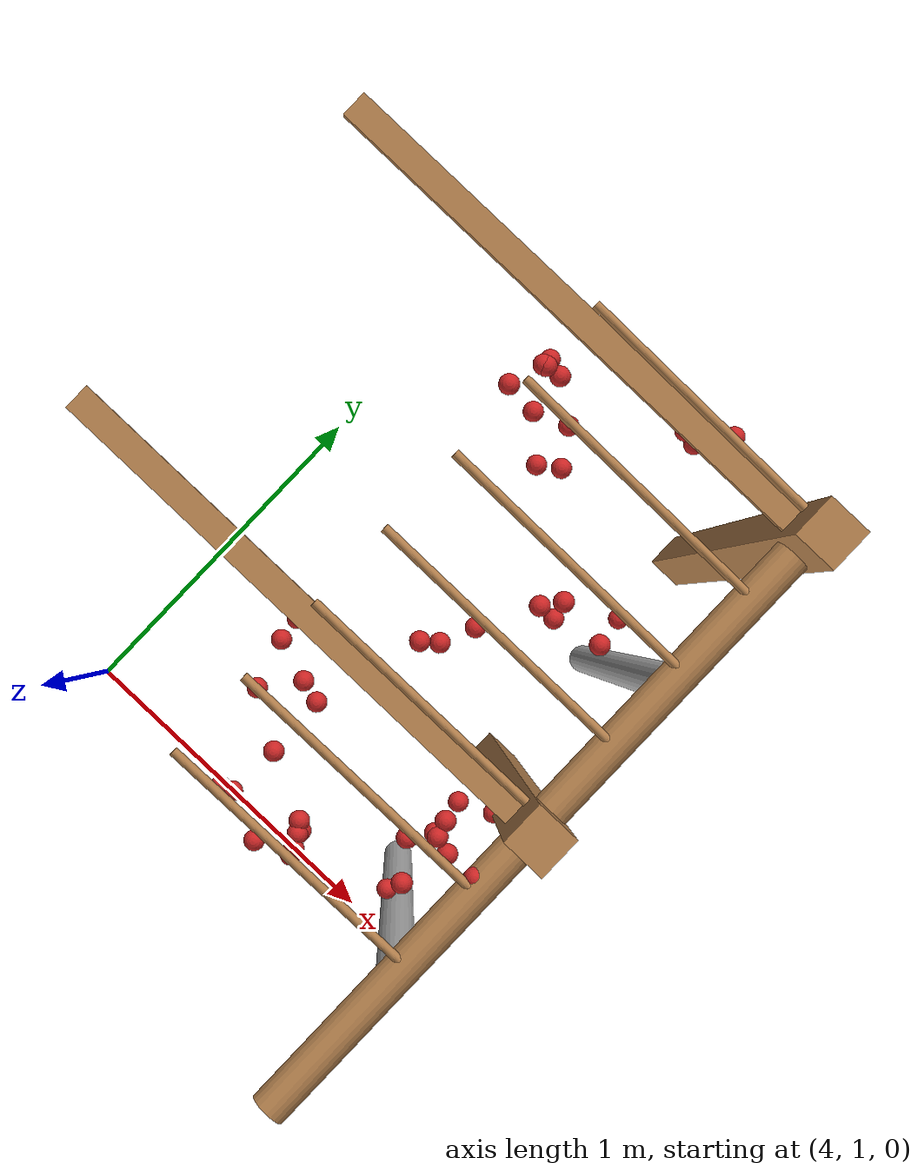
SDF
<sdf version="1.4">
 <model name="pergola">
  <include><name>post_30</name><pose>5.0 1.6 0 0 0 0</pose><uri>model://post</uri></include>
  <include><name>post_31</name><pose>5.0 2.4000000000000004 0 0 0 0</pose><uri>model://post</uri></include>
  <link name="beam_23">
   <pose>4.375 1.6 1.81 0 0 0</pose>
   <collision name="collision"><geometry><box><size>1.25 0.06 0.02</size></box></geometry></collision>
   <visual name="visual">
    <geometry><box><size>1.25 0.06 0.02</size></box></geometry>
    <material><script><name>Gazebo/Wood</name></script></material>
   </visual>
   <inertial>
    <mass>5</mass>
    <inertia>
     <ixx>0.0016666666666666668</ixx>
     <ixy>0.0</ixy>
     <ixz>0.0</ixz>
     <iyy>0.6525416666666667</iyy>
     <iyz>0.0</iyz>
     <izz>0.6512083333333333</izz>
    </inertia>
   </inertial>
  </link>
  <link name="beam_24">
   <pose>4.375 2.4000000000000004 1.81 0 0 0</pose>
   <collision name="collision"><geometry><box><size>1.25 0.06 0.02</size></box></geometry></collision>
   <visual name="visual">
    <geometry><box><size>1.25 0.06 0.02</size></box></geometry>
    <material><script><name>Gazebo/Wood</name></script></material>
   </visual>
   <inertial>
    <mass>5</mass>
    <inertia>
     <ixx>0.0016666666666666668</ixx>
     <ixy>0.0</ixy>
     <ixz>0.0</ixz>
     <iyy>0.6525416666666667</iyy>
     <iyz>0.0</iyz>
     <izz>0.6512083333333333</izz>
    </inertia>
   </inertial>
  </link>
  <include>
   <name>tree_25</name>
   <pose>5.0 1.2000000000000002 0 0 0 0</pose>
   <uri>model://tree_trunk</uri>
  </include>
  <include><name>tree_26</name><pose>5.0 2.0 0 0 0 0</pose><uri>model://tree_trunk</uri></include>
  <link name="baseBranch_25">
   <pose>5.0 1.2000000000000002 1.8 1.5707963267948966 0 0</pose>
   <collision name="collision">
    <geometry><cylinder><radius>0.04</radius><length>0.74</length></cylinder></geometry>
   </collision>
   <visual name="visual">
    <geometry><cylinder><radius>0.04</radius><length>0.74</length></cylinder></geometry>
    <material><script><name>Gazebo/WoodFloor</name></script></material>
   </visual>
   <inertial>
    <mass>10</mass>
    <inertia>
     <ixx>0.4603333333333333</ixx>
     <ixy>0.0</ixy>
     <ixz>0.0</ixz>
     <iyy>0.4603333333333333</iyy>
     <iyz>0.0</iyz>
     <izz>0.008</izz>
    </inertia>
   </inertial>
  </link>
  <link name="baseBranch_26">
   <pose>5.0 2.0 1.8 1.5707963267948966 0 0</pose>
   <collision name="collision">
    <geometry><cylinder><radius>0.04</radius><length>0.74</length></cylinder></geometry>
   </collision>
   <visual name="visual">
    <geometry><cylinder><radius>0.04</radius><length>0.74</length></cylinder></geometry>
    <material><script><name>Gazebo/WoodFloor</name></script></material>
   </visual>
   <inertial>
    <mass>10</mass>
    <inertia>
     <ixx>0.4603333333333333</ixx>
     <ixy>0.0</ixy>
     <ixz>0.0</ixz>
     <iyy>0.4603333333333333</iyy>
     <iyz>0.0</iyz>
     <izz>0.008</izz>
    </inertia>
   </inertial>
  </link>
  <link name="vine_157">
   <pose>4.6875 1.2300000000000002 1.85 0 -1.4909663410826592 0</pose>
   <collision name="collision">
    <geometry><cylinder><radius>0.01</radius><length>0.6269968101992226</length></cylinder></geometry>
   </collision>
   <visual name="visual">
    <geometry><cylinder><radius>0.01</radius><length>0.6269968101992226</length></cylinder></geometry>
    <material><script><name>Gazebo/WoodFloor</name></script></material>
   </visual>
   <inertial>
    <mass>5</mass>
    <inertia>
     <ixx>0.1639270833333333</ixx>
     <ixy>0.0</ixy>
     <ixz>0.0</ixz>
     <iyy>0.1639270833333333</iyy>
     <iyz>0.0</iyz>
     <izz>0.00025</izz>
    </inertia>
   </inertial>
  </link>
  <link name="vine_159">
   <pose>4.6875 1.4300000000000002 1.85 0 -1.4909663410826592 0</pose>
   <collision name="collision">
    <geometry><cylinder><radius>0.01</radius><length>0.6269968101992226</length></cylinder></geometry>
   </collision>
   <visual name="visual">
    <geometry><cylinder><radius>0.01</radius><length>0.6269968101992226</length></cylinder></geometry>
    <material><script><name>Gazebo/WoodFloor</name></script></material>
   </visual>
   <inertial>
    <mass>5</mass>
    <inertia>
     <ixx>0.1639270833333333</ixx>
     <ixy>0.0</ixy>
     <ixz>0.0</ixz>
     <iyy>0.1639270833333333</iyy>
     <iyz>0.0</iyz>
     <izz>0.00025</izz>
    </inertia>
   </inertial>
  </link>
  <link name="vine_161">
   <pose>4.6875 1.6300000000000001 1.85 0 -1.4909663410826592 0</pose>
   <collision name="collision">
    <geometry><cylinder><radius>0.01</radius><length>0.6269968101992226</length></cylinder></geometry>
   </collision>
   <visual name="visual">
    <geometry><cylinder><radius>0.01</radius><length>0.6269968101992226</length></cylinder></geometry>
    <material><script><name>Gazebo/WoodFloor</name></script></material>
   </visual>
   <inertial>
    <mass>5</mass>
    <inertia>
     <ixx>0.1639270833333333</ixx>
     <ixy>0.0</ixy>
     <ixz>0.0</ixz>
     <iyy>0.1639270833333333</iyy>
     <iyz>0.0</iyz>
     <izz>0.00025</izz>
    </inertia>
   </inertial>
  </link>
  <link name="vine_163">
   <pose>4.6875 1.83 1.85 0 -1.4909663410826592 0</pose>
   <collision name="collision">
    <geometry><cylinder><radius>0.01</radius><length>0.6269968101992226</length></cylinder></geometry>
   </collision>
   <visual name="visual">
    <geometry><cylinder><radius>0.01</radius><length>0.6269968101992226</length></cylinder></geometry>
    <material><script><name>Gazebo/WoodFloor</name></script></material>
   </visual>
   <inertial>
    <mass>5</mass>
    <inertia>
     <ixx>0.1639270833333333</ixx>
     <ixy>0.0</ixy>
     <ixz>0.0</ixz>
     <iyy>0.1639270833333333</iyy>
     <iyz>0.0</iyz>
     <izz>0.00025</izz>
    </inertia>
   </inertial>
  </link>
  <link name="vine_165">
   <pose>4.6875 2.03 1.85 0 -1.4909663410826592 0</pose>
   <collision name="collision">
    <geometry><cylinder><radius>0.01</radius><length>0.6269968101992226</length></cylinder></geometry>
   </collision>
   <visual name="visual">
    <geometry><cylinder><radius>0.01</radius><length>0.6269968101992226</length></cylinder></geometry>
    <material><script><name>Gazebo/WoodFloor</name></script></material>
   </visual>
   <inertial>
    <mass>5</mass>
    <inertia>
     <ixx>0.1639270833333333</ixx>
     <ixy>0.0</ixy>
     <ixz>0.0</ixz>
     <iyy>0.1639270833333333</iyy>
     <iyz>0.0</iyz>
     <izz>0.00025</izz>
    </inertia>
   </inertial>
  </link>
  <link name="vine_167">
   <pose>4.6875 2.23 1.85 0 -1.4909663410826592 0</pose>
   <collision name="collision">
    <geometry><cylinder><radius>0.01</radius><length>0.6269968101992226</length></cylinder></geometry>
   </collision>
   <visual name="visual">
    <geometry><cylinder><radius>0.01</radius><length>0.6269968101992226</length></cylinder></geometry>
    <material><script><name>Gazebo/WoodFloor</name></script></material>
   </visual>
   <inertial>
    <mass>5</mass>
    <inertia>
     <ixx>0.1639270833333333</ixx>
     <ixy>0.0</ixy>
     <ixz>0.0</ixz>
     <iyy>0.1639270833333333</iyy>
     <iyz>0.0</iyz>
     <izz>0.00025</izz>
    </inertia>
   </inertial>
  </link>
  <link name="vine_169">
   <pose>4.6875 2.43 1.85 0 -1.4909663410826592 0</pose>
   <collision name="collision">
    <geometry><cylinder><radius>0.01</radius><length>0.6269968101992226</length></cylinder></geometry>
   </collision>
   <visual name="visual">
    <geometry><cylinder><radius>0.01</radius><length>0.6269968101992226</length></cylinder></geometry>
    <material><script><name>Gazebo/WoodFloor</name></script></material>
   </visual>
   <inertial>
    <mass>5</mass>
    <inertia>
     <ixx>0.1639270833333333</ixx>
     <ixy>0.0</ixy>
     <ixz>0.0</ixz>
     <iyy>0.1639270833333333</iyy>
     <iyz>0.0</iyz>
     <izz>0.00025</izz>
    </inertia>
   </inertial>
  </link>
  <link name="fruit_2">
   <pose>4.754883036907124 1.9427562768106053 1.5919200809418699 0 0 0</pose>
   <collision name="fruit_collision_2"><geometry><sphere><radius>0.022</radius></sphere></geometry></collision>
   <visual name="visual">
    <geometry><sphere><radius>0.022</radius></sphere></geometry>
    <material><script><name>Gazebo/Red</name></script></material>
   </visual>
   <inertial>
    <mass>0.05</mass>
    <inertia>
     <ixx>9.679999999999999e-06</ixx>
     <ixy>0.0</ixy>
     <ixz>0.0</ixz>
     <iyy>9.679999999999999e-06</iyy>
     <iyz>0.0</iyz>
     <izz>9.679999999999999e-06</izz>
    </inertia>
   </inertial>
   <sensor name="fruit_contact_2" type="contact">
    <plugin name="contact_plugin_2" filename="libcontact_plugin.so"/>
    <contact><collision>fruit_collision_2</collision><topic>fruit_contact_topic_2</topic></contact>
   </sensor>
  </link>
  <link name="fruit_27">
   <pose>4.402915037716929 1.4140212439120412 1.659274445542817 0 0 0</pose>
   <collision name="fruit_collision_27"><geometry><sphere><radius>0.022</radius></sphere></geometry></collision>
   <visual name="visual">
    <geometry><sphere><radius>0.022</radius></sphere></geometry>
    <material><script><name>Gazebo/Red</name></script></material>
   </visual>
   <inertial>
    <mass>0.05</mass>
    <inertia>
     <ixx>9.679999999999999e-06</ixx>
     <ixy>0.0</ixy>
     <ixz>0.0</ixz>
     <iyy>9.679999999999999e-06</iyy>
     <iyz>0.0</iyz>
     <izz>9.679999999999999e-06</izz>
    </inertia>
   </inertial>
   <sensor name="fruit_contact_27" type="contact">
    <plugin name="contact_plugin_27" filename="libcontact_plugin.so"/>
    <contact><collision>fruit_collision_27</collision><topic>fruit_contact_topic_27</topic></contact>
   </sensor>
  </link>
  <link name="fruit_37">
   <pose>4.424991330446823 2.2220840557664263 1.6569305694294858 0 0 0</pose>
   <collision name="fruit_collision_37"><geometry><sphere><radius>0.022</radius></sphere></geometry></collision>
   <visual name="visual">
    <geometry><sphere><radius>0.022</radius></sphere></geometry>
    <material><script><name>Gazebo/Red</name></script></material>
   </visual>
   <inertial>
    <mass>0.05</mass>
    <inertia>
     <ixx>9.679999999999999e-06</ixx>
     <ixy>0.0</ixy>
     <ixz>0.0</ixz>
     <iyy>9.679999999999999e-06</iyy>
     <iyz>0.0</iyz>
     <izz>9.679999999999999e-06</izz>
    </inertia>
   </inertial>
   <sensor name="fruit_contact_37" type="contact">
    <plugin name="contact_plugin_37" filename="libcontact_plugin.so"/>
    <contact><collision>fruit_collision_37</collision><topic>fruit_contact_topic_37</topic></contact>
   </sensor>
  </link>
  <link name="fruit_51">
   <pose>4.417117793935475 2.301289846492385 1.7358347788518729 0 0 0</pose>
   <collision name="fruit_collision_51"><geometry><sphere><radius>0.022</radius></sphere></geometry></collision>
   <visual name="visual">
    <geometry><sphere><radius>0.022</radius></sphere></geometry>
    <material><script><name>Gazebo/Red</name></script></material>
   </visual>
   <inertial>
    <mass>0.05</mass>
    <inertia>
     <ixx>9.679999999999999e-06</ixx>
     <ixy>0.0</ixy>
     <ixz>0.0</ixz>
     <iyy>9.679999999999999e-06</iyy>
     <iyz>0.0</iyz>
     <izz>9.679999999999999e-06</izz>
    </inertia>
   </inertial>
   <sensor name="fruit_contact_51" type="contact">
    <plugin name="contact_plugin_51" filename="libcontact_plugin.so"/>
    <contact><collision>fruit_collision_51</collision><topic>fruit_contact_topic_51</topic></contact>
   </sensor>
  </link>
  <link name="fruit_84">
   <pose>4.61408206480234 1.1877607763302112 1.7099211166652155 0 0 0</pose>
   <collision name="fruit_collision_84"><geometry><sphere><radius>0.022</radius></sphere></geometry></collision>
   <visual name="visual">
    <geometry><sphere><radius>0.022</radius></sphere></geometry>
    <material><script><name>Gazebo/Red</name></script></material>
   </visual>
   <inertial>
    <mass>0.05</mass>
    <inertia>
     <ixx>9.679999999999999e-06</ixx>
     <ixy>0.0</ixy>
     <ixz>0.0</ixz>
     <iyy>9.679999999999999e-06</iyy>
     <iyz>0.0</iyz>
     <izz>9.679999999999999e-06</izz>
    </inertia>
   </inertial>
   <sensor name="fruit_contact_84" type="contact">
    <plugin name="contact_plugin_84" filename="libcontact_plugin.so"/>
    <contact><collision>fruit_collision_84</collision><topic>fruit_contact_topic_84</topic></contact>
   </sensor>
  </link>
  <link name="fruit_111">
   <pose>4.82903802140686 1.4140230198267396 1.802490410053686 0 0 0</pose>
   <collision name="fruit_collision_111"><geometry><sphere><radius>0.022</radius></sphere></geometry></collision>
   <visual name="visual">
    <geometry><sphere><radius>0.022</radius></sphere></geometry>
    <material><script><name>Gazebo/Red</name></script></material>
   </visual>
   <inertial>
    <mass>0.05</mass>
    <inertia>
     <ixx>9.679999999999999e-06</ixx>
     <ixy>0.0</ixy>
     <ixz>0.0</ixz>
     <iyy>9.679999999999999e-06</iyy>
     <iyz>0.0</iyz>
     <izz>9.679999999999999e-06</izz>
    </inertia>
   </inertial>
   <sensor name="fruit_contact_111" type="contact">
    <plugin name="contact_plugin_111" filename="libcontact_plugin.so"/>
    <contact><collision>fruit_collision_111</collision><topic>fruit_contact_topic_111</topic></contact>
   </sensor>
  </link>
  <link name="fruit_114">
   <pose>4.895487902091679 1.2822763031585402 1.5387027249264207 0 0 0</pose>
   <collision name="fruit_collision_114"><geometry><sphere><radius>0.022</radius></sphere></geometry></collision>
   <visual name="visual">
    <geometry><sphere><radius>0.022</radius></sphere></geometry>
    <material><script><name>Gazebo/Red</name></script></material>
   </visual>
   <inertial>
    <mass>0.05</mass>
    <inertia>
     <ixx>9.679999999999999e-06</ixx>
     <ixy>0.0</ixy>
     <ixz>0.0</ixz>
     <iyy>9.679999999999999e-06</iyy>
     <iyz>0.0</iyz>
     <izz>9.679999999999999e-06</izz>
    </inertia>
   </inertial>
   <sensor name="fruit_contact_114" type="contact">
    <plugin name="contact_plugin_114" filename="libcontact_plugin.so"/>
    <contact><collision>fruit_collision_114</collision><topic>fruit_contact_topic_114</topic></contact>
   </sensor>
  </link>
  <link name="fruit_117">
   <pose>4.876723039166014 1.523142714477517 1.5595643612860797 0 0 0</pose>
   <collision name="fruit_collision_117"><geometry><sphere><radius>0.022</radius></sphere></geometry></collision>
   <visual name="visual">
    <geometry><sphere><radius>0.022</radius></sphere></geometry>
    <material><script><name>Gazebo/Red</name></script></material>
   </visual>
   <inertial>
    <mass>0.05</mass>
    <inertia>
     <ixx>9.679999999999999e-06</ixx>
     <ixy>0.0</ixy>
     <ixz>0.0</ixz>
     <iyy>9.679999999999999e-06</iyy>
     <iyz>0.0</iyz>
     <izz>9.679999999999999e-06</izz>
    </inertia>
   </inertial>
   <sensor name="fruit_contact_117" type="contact">
    <plugin name="contact_plugin_117" filename="libcontact_plugin.so"/>
    <contact><collision>fruit_collision_117</collision><topic>fruit_contact_topic_117</topic></contact>
   </sensor>
  </link>
  <link name="fruit_141">
   <pose>4.844761433397326 1.9575501628234668 1.793978716466802 0 0 0</pose>
   <collision name="fruit_collision_141"><geometry><sphere><radius>0.022</radius></sphere></geometry></collision>
   <visual name="visual">
    <geometry><sphere><radius>0.022</radius></sphere></geometry>
    <material><script><name>Gazebo/Red</name></script></material>
   </visual>
   <inertial>
    <mass>0.05</mass>
    <inertia>
     <ixx>9.679999999999999e-06</ixx>
     <ixy>0.0</ixy>
     <ixz>0.0</ixz>
     <iyy>9.679999999999999e-06</iyy>
     <iyz>0.0</iyz>
     <izz>9.679999999999999e-06</izz>
    </inertia>
   </inertial>
   <sensor name="fruit_contact_141" type="contact">
    <plugin name="contact_plugin_141" filename="libcontact_plugin.so"/>
    <contact><collision>fruit_collision_141</collision><topic>fruit_contact_topic_141</topic></contact>
   </sensor>
  </link>
  <link name="fruit_148">
   <pose>4.710032704710185 2.3926646511874754 1.7070969373371325 0 0 0</pose>
   <collision name="fruit_collision_148"><geometry><sphere><radius>0.022</radius></sphere></geometry></collision>
   <visual name="visual">
    <geometry><sphere><radius>0.022</radius></sphere></geometry>
    <material><script><name>Gazebo/Red</name></script></material>
   </visual>
   <inertial>
    <mass>0.05</mass>
    <inertia>
     <ixx>9.679999999999999e-06</ixx>
     <ixy>0.0</ixy>
     <ixz>0.0</ixz>
     <iyy>9.679999999999999e-06</iyy>
     <iyz>0.0</iyz>
     <izz>9.679999999999999e-06</izz>
    </inertia>
   </inertial>
   <sensor name="fruit_contact_148" type="contact">
    <plugin name="contact_plugin_148" filename="libcontact_plugin.so"/>
    <contact><collision>fruit_collision_148</collision><topic>fruit_contact_topic_148</topic></contact>
   </sensor>
  </link>
  <link name="fruit_161">
   <pose>4.505622121664114 2.150791592395608 1.6162312609631582 0 0 0</pose>
   <collision name="fruit_collision_161"><geometry><sphere><radius>0.022</radius></sphere></geometry></collision>
   <visual name="visual">
    <geometry><sphere><radius>0.022</radius></sphere></geometry>
    <material><script><name>Gazebo/Red</name></script></material>
   </visual>
   <inertial>
    <mass>0.05</mass>
    <inertia>
     <ixx>9.679999999999999e-06</ixx>
     <ixy>0.0</ixy>
     <ixz>0.0</ixz>
     <iyy>9.679999999999999e-06</iyy>
     <iyz>0.0</iyz>
     <izz>9.679999999999999e-06</izz>
    </inertia>
   </inertial>
   <sensor name="fruit_contact_161" type="contact">
    <plugin name="contact_plugin_161" filename="libcontact_plugin.so"/>
    <contact><collision>fruit_collision_161</collision><topic>fruit_contact_topic_161</topic></contact>
   </sensor>
  </link>
  <link name="fruit_176">
   <pose>4.580311975381751 1.7153433354539132 1.7040892025996832 0 0 0</pose>
   <collision name="fruit_collision_176"><geometry><sphere><radius>0.022</radius></sphere></geometry></collision>
   <visual name="visual">
    <geometry><sphere><radius>0.022</radius></sphere></geometry>
    <material><script><name>Gazebo/Red</name></script></material>
   </visual>
   <inertial>
    <mass>0.05</mass>
    <inertia>
     <ixx>9.679999999999999e-06</ixx>
     <ixy>0.0</ixy>
     <ixz>0.0</ixz>
     <iyy>9.679999999999999e-06</iyy>
     <iyz>0.0</iyz>
     <izz>9.679999999999999e-06</izz>
    </inertia>
   </inertial>
   <sensor name="fruit_contact_176" type="contact">
    <plugin name="contact_plugin_176" filename="libcontact_plugin.so"/>
    <contact><collision>fruit_collision_176</collision><topic>fruit_contact_topic_176</topic></contact>
   </sensor>
  </link>
  <link name="fruit_179">
   <pose>4.881986310379414 1.3434763471403444 1.8176300991421295 0 0 0</pose>
   <collision name="fruit_collision_179"><geometry><sphere><radius>0.022</radius></sphere></geometry></collision>
   <visual name="visual">
    <geometry><sphere><radius>0.022</radius></sphere></geometry>
    <material><script><name>Gazebo/Red</name></script></material>
   </visual>
   <inertial>
    <mass>0.05</mass>
    <inertia>
     <ixx>9.679999999999999e-06</ixx>
     <ixy>0.0</ixy>
     <ixz>0.0</ixz>
     <iyy>9.679999999999999e-06</iyy>
     <iyz>0.0</iyz>
     <izz>9.679999999999999e-06</izz>
    </inertia>
   </inertial>
   <sensor name="fruit_contact_179" type="contact">
    <plugin name="contact_plugin_179" filename="libcontact_plugin.so"/>
    <contact><collision>fruit_collision_179</collision><topic>fruit_contact_topic_179</topic></contact>
   </sensor>
  </link>
  <link name="fruit_214">
   <pose>4.677581202587265 2.3983286500397014 1.717641774999484 0 0 0</pose>
   <collision name="fruit_collision_214"><geometry><sphere><radius>0.022</radius></sphere></geometry></collision>
   <visual name="visual">
    <geometry><sphere><radius>0.022</radius></sphere></geometry>
    <material><script><name>Gazebo/Red</name></script></material>
   </visual>
   <inertial>
    <mass>0.05</mass>
    <inertia>
     <ixx>9.679999999999999e-06</ixx>
     <ixy>0.0</ixy>
     <ixz>0.0</ixz>
     <iyy>9.679999999999999e-06</iyy>
     <iyz>0.0</iyz>
     <izz>9.679999999999999e-06</izz>
    </inertia>
   </inertial>
   <sensor name="fruit_contact_214" type="contact">
    <plugin name="contact_plugin_214" filename="libcontact_plugin.so"/>
    <contact><collision>fruit_collision_214</collision><topic>fruit_contact_topic_214</topic></contact>
   </sensor>
  </link>
  <link name="fruit_241">
   <pose>4.5183322590725785 1.3467744824525245 1.7038624045500907 0 0 0</pose>
   <collision name="fruit_collision_241"><geometry><sphere><radius>0.022</radius></sphere></geometry></collision>
   <visual name="visual">
    <geometry><sphere><radius>0.022</radius></sphere></geometry>
    <material><script><name>Gazebo/Red</name></script></material>
   </visual>
   <inertial>
    <mass>0.05</mass>
    <inertia>
     <ixx>9.679999999999999e-06</ixx>
     <ixy>0.0</ixy>
     <ixz>0.0</ixz>
     <iyy>9.679999999999999e-06</iyy>
     <iyz>0.0</iyz>
     <izz>9.679999999999999e-06</izz>
    </inertia>
   </inertial>
   <sensor name="fruit_contact_241" type="contact">
    <plugin name="contact_plugin_241" filename="libcontact_plugin.so"/>
    <contact><collision>fruit_collision_241</collision><topic>fruit_contact_topic_241</topic></contact>
   </sensor>
  </link>
  <link name="fruit_261">
   <pose>4.7047686539620805 1.9322919693517608 1.78616872018947 0 0 0</pose>
   <collision name="fruit_collision_261"><geometry><sphere><radius>0.022</radius></sphere></geometry></collision>
   <visual name="visual">
    <geometry><sphere><radius>0.022</radius></sphere></geometry>
    <material><script><name>Gazebo/Red</name></script></material>
   </visual>
   <inertial>
    <mass>0.05</mass>
    <inertia>
     <ixx>9.679999999999999e-06</ixx>
     <ixy>0.0</ixy>
     <ixz>0.0</ixz>
     <iyy>9.679999999999999e-06</iyy>
     <iyz>0.0</iyz>
     <izz>9.679999999999999e-06</izz>
    </inertia>
   </inertial>
   <sensor name="fruit_contact_261" type="contact">
    <plugin name="contact_plugin_261" filename="libcontact_plugin.so"/>
    <contact><collision>fruit_collision_261</collision><topic>fruit_contact_topic_261</topic></contact>
   </sensor>
  </link>
  <link name="fruit_397">
   <pose>4.498828458278893 2.2511315218768027 1.6551008845251771 0 0 0</pose>
   <collision name="fruit_collision_397"><geometry><sphere><radius>0.022</radius></sphere></geometry></collision>
   <visual name="visual">
    <geometry><sphere><radius>0.022</radius></sphere></geometry>
    <material><script><name>Gazebo/Red</name></script></material>
   </visual>
   <inertial>
    <mass>0.05</mass>
    <inertia>
     <ixx>9.679999999999999e-06</ixx>
     <ixy>0.0</ixy>
     <ixz>0.0</ixz>
     <iyy>9.679999999999999e-06</iyy>
     <iyz>0.0</iyz>
     <izz>9.679999999999999e-06</izz>
    </inertia>
   </inertial>
   <sensor name="fruit_contact_397" type="contact">
    <plugin name="contact_plugin_397" filename="libcontact_plugin.so"/>
    <contact><collision>fruit_collision_397</collision><topic>fruit_contact_topic_397</topic></contact>
   </sensor>
  </link>
  <link name="fruit_403">
   <pose>4.669247487597385 1.2572958860265178 1.703560204488423 0 0 0</pose>
   <collision name="fruit_collision_403"><geometry><sphere><radius>0.022</radius></sphere></geometry></collision>
   <visual name="visual">
    <geometry><sphere><radius>0.022</radius></sphere></geometry>
    <material><script><name>Gazebo/Red</name></script></material>
   </visual>
   <inertial>
    <mass>0.05</mass>
    <inertia>
     <ixx>9.679999999999999e-06</ixx>
     <ixy>0.0</ixy>
     <ixz>0.0</ixz>
     <iyy>9.679999999999999e-06</iyy>
     <iyz>0.0</iyz>
     <izz>9.679999999999999e-06</izz>
    </inertia>
   </inertial>
   <sensor name="fruit_contact_403" type="contact">
    <plugin name="contact_plugin_403" filename="libcontact_plugin.so"/>
    <contact><collision>fruit_collision_403</collision><topic>fruit_contact_topic_403</topic></contact>
   </sensor>
  </link>
  <link name="fruit_404">
   <pose>4.8555356653364745 2.038190894310789 1.5712005713078074 0 0 0</pose>
   <collision name="fruit_collision_404"><geometry><sphere><radius>0.022</radius></sphere></geometry></collision>
   <visual name="visual">
    <geometry><sphere><radius>0.022</radius></sphere></geometry>
    <material><script><name>Gazebo/Red</name></script></material>
   </visual>
   <inertial>
    <mass>0.05</mass>
    <inertia>
     <ixx>9.679999999999999e-06</ixx>
     <ixy>0.0</ixy>
     <ixz>0.0</ixz>
     <iyy>9.679999999999999e-06</iyy>
     <iyz>0.0</iyz>
     <izz>9.679999999999999e-06</izz>
    </inertia>
   </inertial>
   <sensor name="fruit_contact_404" type="contact">
    <plugin name="contact_plugin_404" filename="libcontact_plugin.so"/>
    <contact><collision>fruit_collision_404</collision><topic>fruit_contact_topic_404</topic></contact>
   </sensor>
  </link>
  <link name="fruit_417">
   <pose>4.3620266664301015 1.5714213423493517 1.5853016268024627 0 0 0</pose>
   <collision name="fruit_collision_417"><geometry><sphere><radius>0.022</radius></sphere></geometry></collision>
   <visual name="visual">
    <geometry><sphere><radius>0.022</radius></sphere></geometry>
    <material><script><name>Gazebo/Red</name></script></material>
   </visual>
   <inertial>
    <mass>0.05</mass>
    <inertia>
     <ixx>9.679999999999999e-06</ixx>
     <ixy>0.0</ixy>
     <ixz>0.0</ixz>
     <iyy>9.679999999999999e-06</iyy>
     <iyz>0.0</iyz>
     <izz>9.679999999999999e-06</izz>
    </inertia>
   </inertial>
   <sensor name="fruit_contact_417" type="contact">
    <plugin name="contact_plugin_417" filename="libcontact_plugin.so"/>
    <contact><collision>fruit_collision_417</collision><topic>fruit_contact_topic_417</topic></contact>
   </sensor>
  </link>
  <link name="fruit_437">
   <pose>4.68907833199071 1.2153135284303203 1.6948132353767817 0 0 0</pose>
   <collision name="fruit_collision_437"><geometry><sphere><radius>0.022</radius></sphere></geometry></collision>
   <visual name="visual">
    <geometry><sphere><radius>0.022</radius></sphere></geometry>
    <material><script><name>Gazebo/Red</name></script></material>
   </visual>
   <inertial>
    <mass>0.05</mass>
    <inertia>
     <ixx>9.679999999999999e-06</ixx>
     <ixy>0.0</ixy>
     <ixz>0.0</ixz>
     <iyy>9.679999999999999e-06</iyy>
     <iyz>0.0</iyz>
     <izz>9.679999999999999e-06</izz>
    </inertia>
   </inertial>
   <sensor name="fruit_contact_437" type="contact">
    <plugin name="contact_plugin_437" filename="libcontact_plugin.so"/>
    <contact><collision>fruit_collision_437</collision><topic>fruit_contact_topic_437</topic></contact>
   </sensor>
  </link>
  <link name="fruit_451">
   <pose>4.4871107709674005 1.2093476715480207 1.6259633727538227 0 0 0</pose>
   <collision name="fruit_collision_451"><geometry><sphere><radius>0.022</radius></sphere></geometry></collision>
   <visual name="visual">
    <geometry><sphere><radius>0.022</radius></sphere></geometry>
    <material><script><name>Gazebo/Red</name></script></material>
   </visual>
   <inertial>
    <mass>0.05</mass>
    <inertia>
     <ixx>9.679999999999999e-06</ixx>
     <ixy>0.0</ixy>
     <ixz>0.0</ixz>
     <iyy>9.679999999999999e-06</iyy>
     <iyz>0.0</iyz>
     <izz>9.679999999999999e-06</izz>
    </inertia>
   </inertial>
   <sensor name="fruit_contact_451" type="contact">
    <plugin name="contact_plugin_451" filename="libcontact_plugin.so"/>
    <contact><collision>fruit_collision_451</collision><topic>fruit_contact_topic_451</topic></contact>
   </sensor>
  </link>
  <link name="fruit_459">
   <pose>4.653576411659497 1.279430067815992 1.7018882278790965 0 0 0</pose>
   <collision name="fruit_collision_459"><geometry><sphere><radius>0.022</radius></sphere></geometry></collision>
   <visual name="visual">
    <geometry><sphere><radius>0.022</radius></sphere></geometry>
    <material><script><name>Gazebo/Red</name></script></material>
   </visual>
   <inertial>
    <mass>0.05</mass>
    <inertia>
     <ixx>9.679999999999999e-06</ixx>
     <ixy>0.0</ixy>
     <ixz>0.0</ixz>
     <iyy>9.679999999999999e-06</iyy>
     <iyz>0.0</iyz>
     <izz>9.679999999999999e-06</izz>
    </inertia>
   </inertial>
   <sensor name="fruit_contact_459" type="contact">
    <plugin name="contact_plugin_459" filename="libcontact_plugin.so"/>
    <contact><collision>fruit_collision_459</collision><topic>fruit_contact_topic_459</topic></contact>
   </sensor>
  </link>
  <link name="fruit_468">
   <pose>4.739589702408697 2.445879395443208 1.702076092784995 0 0 0</pose>
   <collision name="fruit_collision_468"><geometry><sphere><radius>0.022</radius></sphere></geometry></collision>
   <visual name="visual">
    <geometry><sphere><radius>0.022</radius></sphere></geometry>
    <material><script><name>Gazebo/Red</name></script></material>
   </visual>
   <inertial>
    <mass>0.05</mass>
    <inertia>
     <ixx>9.679999999999999e-06</ixx>
     <ixy>0.0</ixy>
     <ixz>0.0</ixz>
     <iyy>9.679999999999999e-06</iyy>
     <iyz>0.0</iyz>
     <izz>9.679999999999999e-06</izz>
    </inertia>
   </inertial>
   <sensor name="fruit_contact_468" type="contact">
    <plugin name="contact_plugin_468" filename="libcontact_plugin.so"/>
    <contact><collision>fruit_collision_468</collision><topic>fruit_contact_topic_468</topic></contact>
   </sensor>
  </link>
  <link name="fruit_526">
   <pose>4.862449889644947 1.4910526795324501 1.7959158471392433 0 0 0</pose>
   <collision name="fruit_collision_526"><geometry><sphere><radius>0.022</radius></sphere></geometry></collision>
   <visual name="visual">
    <geometry><sphere><radius>0.022</radius></sphere></geometry>
    <material><script><name>Gazebo/Red</name></script></material>
   </visual>
   <inertial>
    <mass>0.05</mass>
    <inertia>
     <ixx>9.679999999999999e-06</ixx>
     <ixy>0.0</ixy>
     <ixz>0.0</ixz>
     <iyy>9.679999999999999e-06</iyy>
     <iyz>0.0</iyz>
     <izz>9.679999999999999e-06</izz>
    </inertia>
   </inertial>
   <sensor name="fruit_contact_526" type="contact">
    <plugin name="contact_plugin_526" filename="libcontact_plugin.so"/>
    <contact><collision>fruit_collision_526</collision><topic>fruit_contact_topic_526</topic></contact>
   </sensor>
  </link>
  <link name="fruit_569">
   <pose>4.512888160493679 1.4757187030314298 1.637832579378292 0 0 0</pose>
   <collision name="fruit_collision_569"><geometry><sphere><radius>0.022</radius></sphere></geometry></collision>
   <visual name="visual">
    <geometry><sphere><radius>0.022</radius></sphere></geometry>
    <material><script><name>Gazebo/Red</name></script></material>
   </visual>
   <inertial>
    <mass>0.05</mass>
    <inertia>
     <ixx>9.679999999999999e-06</ixx>
     <ixy>0.0</ixy>
     <ixz>0.0</ixz>
     <iyy>9.679999999999999e-06</iyy>
     <iyz>0.0</iyz>
     <izz>9.679999999999999e-06</izz>
    </inertia>
   </inertial>
   <sensor name="fruit_contact_569" type="contact">
    <plugin name="contact_plugin_569" filename="libcontact_plugin.so"/>
    <contact><collision>fruit_collision_569</collision><topic>fruit_contact_topic_569</topic></contact>
   </sensor>
  </link>
  <link name="fruit_574">
   <pose>4.548416215342387 2.181450904237695 1.6150546487576107 0 0 0</pose>
   <collision name="fruit_collision_574"><geometry><sphere><radius>0.022</radius></sphere></geometry></collision>
   <visual name="visual">
    <geometry><sphere><radius>0.022</radius></sphere></geometry>
    <material><script><name>Gazebo/Red</name></script></material>
   </visual>
   <inertial>
    <mass>0.05</mass>
    <inertia>
     <ixx>9.679999999999999e-06</ixx>
     <ixy>0.0</ixy>
     <ixz>0.0</ixz>
     <iyy>9.679999999999999e-06</iyy>
     <iyz>0.0</iyz>
     <izz>9.679999999999999e-06</izz>
    </inertia>
   </inertial>
   <sensor name="fruit_contact_574" type="contact">
    <plugin name="contact_plugin_574" filename="libcontact_plugin.so"/>
    <contact><collision>fruit_collision_574</collision><topic>fruit_contact_topic_574</topic></contact>
   </sensor>
  </link>
  <link name="fruit_578">
   <pose>4.356314928783949 2.209166434638318 1.8091450769066293 0 0 0</pose>
   <collision name="fruit_collision_578"><geometry><sphere><radius>0.022</radius></sphere></geometry></collision>
   <visual name="visual">
    <geometry><sphere><radius>0.022</radius></sphere></geometry>
    <material><script><name>Gazebo/Red</name></script></material>
   </visual>
   <inertial>
    <mass>0.05</mass>
    <inertia>
     <ixx>9.679999999999999e-06</ixx>
     <ixy>0.0</ixy>
     <ixz>0.0</ixz>
     <iyy>9.679999999999999e-06</iyy>
     <iyz>0.0</iyz>
     <izz>9.679999999999999e-06</izz>
    </inertia>
   </inertial>
   <sensor name="fruit_contact_578" type="contact">
    <plugin name="contact_plugin_578" filename="libcontact_plugin.so"/>
    <contact><collision>fruit_collision_578</collision><topic>fruit_contact_topic_578</topic></contact>
   </sensor>
  </link>
  <link name="fruit_579">
   <pose>4.378508567284166 2.2861614726606043 1.796058918369125 0 0 0</pose>
   <collision name="fruit_collision_579"><geometry><sphere><radius>0.022</radius></sphere></geometry></collision>
   <visual name="visual">
    <geometry><sphere><radius>0.022</radius></sphere></geometry>
    <material><script><name>Gazebo/Red</name></script></material>
   </visual>
   <inertial>
    <mass>0.05</mass>
    <inertia>
     <ixx>9.679999999999999e-06</ixx>
     <ixy>0.0</ixy>
     <ixz>0.0</ixz>
     <iyy>9.679999999999999e-06</iyy>
     <iyz>0.0</iyz>
     <izz>9.679999999999999e-06</izz>
    </inertia>
   </inertial>
   <sensor name="fruit_contact_579" type="contact">
    <plugin name="contact_plugin_579" filename="libcontact_plugin.so"/>
    <contact><collision>fruit_collision_579</collision><topic>fruit_contact_topic_579</topic></contact>
   </sensor>
  </link>
  <link name="fruit_589">
   <pose>4.372740533806025 2.3396964155880426 1.5602132772368666 0 0 0</pose>
   <collision name="fruit_collision_589"><geometry><sphere><radius>0.022</radius></sphere></geometry></collision>
   <visual name="visual">
    <geometry><sphere><radius>0.022</radius></sphere></geometry>
    <material><script><name>Gazebo/Red</name></script></material>
   </visual>
   <inertial>
    <mass>0.05</mass>
    <inertia>
     <ixx>9.679999999999999e-06</ixx>
     <ixy>0.0</ixy>
     <ixz>0.0</ixz>
     <iyy>9.679999999999999e-06</iyy>
     <iyz>0.0</iyz>
     <izz>9.679999999999999e-06</izz>
    </inertia>
   </inertial>
   <sensor name="fruit_contact_589" type="contact">
    <plugin name="contact_plugin_589" filename="libcontact_plugin.so"/>
    <contact><collision>fruit_collision_589</collision><topic>fruit_contact_topic_589</topic></contact>
   </sensor>
  </link>
  <link name="fruit_601">
   <pose>4.949241209235857 1.5559397312880516 1.5395310985094344 0 0 0</pose>
   <collision name="fruit_collision_601"><geometry><sphere><radius>0.022</radius></sphere></geometry></collision>
   <visual name="visual">
    <geometry><sphere><radius>0.022</radius></sphere></geometry>
    <material><script><name>Gazebo/Red</name></script></material>
   </visual>
   <inertial>
    <mass>0.05</mass>
    <inertia>
     <ixx>9.679999999999999e-06</ixx>
     <ixy>0.0</ixy>
     <ixz>0.0</ixz>
     <iyy>9.679999999999999e-06</iyy>
     <iyz>0.0</iyz>
     <izz>9.679999999999999e-06</izz>
    </inertia>
   </inertial>
   <sensor name="fruit_contact_601" type="contact">
    <plugin name="contact_plugin_601" filename="libcontact_plugin.so"/>
    <contact><collision>fruit_collision_601</collision><topic>fruit_contact_topic_601</topic></contact>
   </sensor>
  </link>
  <link name="fruit_647">
   <pose>4.979119920133921 1.4495681473513098 1.8162641909974218 0 0 0</pose>
   <collision name="fruit_collision_647"><geometry><sphere><radius>0.022</radius></sphere></geometry></collision>
   <visual name="visual">
    <geometry><sphere><radius>0.022</radius></sphere></geometry>
    <material><script><name>Gazebo/Red</name></script></material>
   </visual>
   <inertial>
    <mass>0.05</mass>
    <inertia>
     <ixx>9.679999999999999e-06</ixx>
     <ixy>0.0</ixy>
     <ixz>0.0</ixz>
     <iyy>9.679999999999999e-06</iyy>
     <iyz>0.0</iyz>
     <izz>9.679999999999999e-06</izz>
    </inertia>
   </inertial>
   <sensor name="fruit_contact_647" type="contact">
    <plugin name="contact_plugin_647" filename="libcontact_plugin.so"/>
    <contact><collision>fruit_collision_647</collision><topic>fruit_contact_topic_647</topic></contact>
   </sensor>
  </link>
  <link name="fruit_657">
   <pose>4.7342386565592856 1.9711994308724805 1.7827376049680077 0 0 0</pose>
   <collision name="fruit_collision_657"><geometry><sphere><radius>0.022</radius></sphere></geometry></collision>
   <visual name="visual">
    <geometry><sphere><radius>0.022</radius></sphere></geometry>
    <material><script><name>Gazebo/Red</name></script></material>
   </visual>
   <inertial>
    <mass>0.05</mass>
    <inertia>
     <ixx>9.679999999999999e-06</ixx>
     <ixy>0.0</ixy>
     <ixz>0.0</ixz>
     <iyy>9.679999999999999e-06</iyy>
     <iyz>0.0</iyz>
     <izz>9.679999999999999e-06</izz>
    </inertia>
   </inertial>
   <sensor name="fruit_contact_657" type="contact">
    <plugin name="contact_plugin_657" filename="libcontact_plugin.so"/>
    <contact><collision>fruit_collision_657</collision><topic>fruit_contact_topic_657</topic></contact>
   </sensor>
  </link>
  <link name="fruit_661">
   <pose>4.670515170438978 1.2648130859154254 1.6901751037696353 0 0 0</pose>
   <collision name="fruit_collision_661"><geometry><sphere><radius>0.022</radius></sphere></geometry></collision>
   <visual name="visual">
    <geometry><sphere><radius>0.022</radius></sphere></geometry>
    <material><script><name>Gazebo/Red</name></script></material>
   </visual>
   <inertial>
    <mass>0.05</mass>
    <inertia>
     <ixx>9.679999999999999e-06</ixx>
     <ixy>0.0</ixy>
     <ixz>0.0</ixz>
     <iyy>9.679999999999999e-06</iyy>
     <iyz>0.0</iyz>
     <izz>9.679999999999999e-06</izz>
    </inertia>
   </inertial>
   <sensor name="fruit_contact_661" type="contact">
    <plugin name="contact_plugin_661" filename="libcontact_plugin.so"/>
    <contact><collision>fruit_collision_661</collision><topic>fruit_contact_topic_661</topic></contact>
   </sensor>
  </link>
  <link name="fruit_665">
   <pose>4.512983910990122 1.2198475057106344 1.6280384316636907 0 0 0</pose>
   <collision name="fruit_collision_665"><geometry><sphere><radius>0.022</radius></sphere></geometry></collision>
   <visual name="visual">
    <geometry><sphere><radius>0.022</radius></sphere></geometry>
    <material><script><name>Gazebo/Red</name></script></material>
   </visual>
   <inertial>
    <mass>0.05</mass>
    <inertia>
     <ixx>9.679999999999999e-06</ixx>
     <ixy>0.0</ixy>
     <ixz>0.0</ixz>
     <iyy>9.679999999999999e-06</iyy>
     <iyz>0.0</iyz>
     <izz>9.679999999999999e-06</izz>
    </inertia>
   </inertial>
   <sensor name="fruit_contact_665" type="contact">
    <plugin name="contact_plugin_665" filename="libcontact_plugin.so"/>
    <contact><collision>fruit_collision_665</collision><topic>fruit_contact_topic_665</topic></contact>
   </sensor>
  </link>
  <link name="fruit_688">
   <pose>4.864620311091439 1.4583047353832774 1.7873023519213505 0 0 0</pose>
   <collision name="fruit_collision_688"><geometry><sphere><radius>0.022</radius></sphere></geometry></collision>
   <visual name="visual">
    <geometry><sphere><radius>0.022</radius></sphere></geometry>
    <material><script><name>Gazebo/Red</name></script></material>
   </visual>
   <inertial>
    <mass>0.05</mass>
    <inertia>
     <ixx>9.679999999999999e-06</ixx>
     <ixy>0.0</ixy>
     <ixz>0.0</ixz>
     <iyy>9.679999999999999e-06</iyy>
     <iyz>0.0</iyz>
     <izz>9.679999999999999e-06</izz>
    </inertia>
   </inertial>
   <sensor name="fruit_contact_688" type="contact">
    <plugin name="contact_plugin_688" filename="libcontact_plugin.so"/>
    <contact><collision>fruit_collision_688</collision><topic>fruit_contact_topic_688</topic></contact>
   </sensor>
  </link>
  <link name="fruit_703">
   <pose>4.3846550649767195 2.288145592662128 1.7966751778750318 0 0 0</pose>
   <collision name="fruit_collision_703"><geometry><sphere><radius>0.022</radius></sphere></geometry></collision>
   <visual name="visual">
    <geometry><sphere><radius>0.022</radius></sphere></geometry>
    <material><script><name>Gazebo/Red</name></script></material>
   </visual>
   <inertial>
    <mass>0.05</mass>
    <inertia>
     <ixx>9.679999999999999e-06</ixx>
     <ixy>0.0</ixy>
     <ixz>0.0</ixz>
     <iyy>9.679999999999999e-06</iyy>
     <iyz>0.0</iyz>
     <izz>9.679999999999999e-06</izz>
    </inertia>
   </inertial>
   <sensor name="fruit_contact_703" type="contact">
    <plugin name="contact_plugin_703" filename="libcontact_plugin.so"/>
    <contact><collision>fruit_collision_703</collision><topic>fruit_contact_topic_703</topic></contact>
   </sensor>
  </link>
  <link name="fruit_718">
   <pose>4.91099970595537 1.4444263161156938 1.7884097115748205 0 0 0</pose>
   <collision name="fruit_collision_718"><geometry><sphere><radius>0.022</radius></sphere></geometry></collision>
   <visual name="visual">
    <geometry><sphere><radius>0.022</radius></sphere></geometry>
    <material><script><name>Gazebo/Red</name></script></material>
   </visual>
   <inertial>
    <mass>0.05</mass>
    <inertia>
     <ixx>9.679999999999999e-06</ixx>
     <ixy>0.0</ixy>
     <ixz>0.0</ixz>
     <iyy>9.679999999999999e-06</iyy>
     <iyz>0.0</iyz>
     <izz>9.679999999999999e-06</izz>
    </inertia>
   </inertial>
   <sensor name="fruit_contact_718" type="contact">
    <plugin name="contact_plugin_718" filename="libcontact_plugin.so"/>
    <contact><collision>fruit_collision_718</collision><topic>fruit_contact_topic_718</topic></contact>
   </sensor>
  </link>
  <link name="fruit_722">
   <pose>4.612575010441189 1.741516012333497 1.695857326620904 0 0 0</pose>
   <collision name="fruit_collision_722"><geometry><sphere><radius>0.022</radius></sphere></geometry></collision>
   <visual name="visual">
    <geometry><sphere><radius>0.022</radius></sphere></geometry>
    <material><script><name>Gazebo/Red</name></script></material>
   </visual>
   <inertial>
    <mass>0.05</mass>
    <inertia>
     <ixx>9.679999999999999e-06</ixx>
     <ixy>0.0</ixy>
     <ixz>0.0</ixz>
     <iyy>9.679999999999999e-06</iyy>
     <iyz>0.0</iyz>
     <izz>9.679999999999999e-06</izz>
    </inertia>
   </inertial>
   <sensor name="fruit_contact_722" type="contact">
    <plugin name="contact_plugin_722" filename="libcontact_plugin.so"/>
    <contact><collision>fruit_collision_722</collision><topic>fruit_contact_topic_722</topic></contact>
   </sensor>
  </link>
  <link name="fruit_726">
   <pose>4.463170520135504 1.4895908166467167 1.6446987913754036 0 0 0</pose>
   <collision name="fruit_collision_726"><geometry><sphere><radius>0.022</radius></sphere></geometry></collision>
   <visual name="visual">
    <geometry><sphere><radius>0.022</radius></sphere></geometry>
    <material><script><name>Gazebo/Red</name></script></material>
   </visual>
   <inertial>
    <mass>0.05</mass>
    <inertia>
     <ixx>9.679999999999999e-06</ixx>
     <ixy>0.0</ixy>
     <ixz>0.0</ixz>
     <iyy>9.679999999999999e-06</iyy>
     <iyz>0.0</iyz>
     <izz>9.679999999999999e-06</izz>
    </inertia>
   </inertial>
   <sensor name="fruit_contact_726" type="contact">
    <plugin name="contact_plugin_726" filename="libcontact_plugin.so"/>
    <contact><collision>fruit_collision_726</collision><topic>fruit_contact_topic_726</topic></contact>
   </sensor>
  </link>
  <link name="fruit_729">
   <pose>4.760995299553699 2.46179401303931 1.7015061542462862 0 0 0</pose>
   <collision name="fruit_collision_729"><geometry><sphere><radius>0.022</radius></sphere></geometry></collision>
   <visual name="visual">
    <geometry><sphere><radius>0.022</radius></sphere></geometry>
    <material><script><name>Gazebo/Red</name></script></material>
   </visual>
   <inertial>
    <mass>0.05</mass>
    <inertia>
     <ixx>9.679999999999999e-06</ixx>
     <ixy>0.0</ixy>
     <ixz>0.0</ixz>
     <iyy>9.679999999999999e-06</iyy>
     <iyz>0.0</iyz>
     <izz>9.679999999999999e-06</izz>
    </inertia>
   </inertial>
   <sensor name="fruit_contact_729" type="contact">
    <plugin name="contact_plugin_729" filename="libcontact_plugin.so"/>
    <contact><collision>fruit_collision_729</collision><topic>fruit_contact_topic_729</topic></contact>
   </sensor>
  </link>
  <link name="fruit_758">
   <pose>4.644360317366943 1.814510243696408 1.6833430609335431 0 0 0</pose>
   <collision name="fruit_collision_758"><geometry><sphere><radius>0.022</radius></sphere></geometry></collision>
   <visual name="visual">
    <geometry><sphere><radius>0.022</radius></sphere></geometry>
    <material><script><name>Gazebo/Red</name></script></material>
   </visual>
   <inertial>
    <mass>0.05</mass>
    <inertia>
     <ixx>9.679999999999999e-06</ixx>
     <ixy>0.0</ixy>
     <ixz>0.0</ixz>
     <iyy>9.679999999999999e-06</iyy>
     <iyz>0.0</iyz>
     <izz>9.679999999999999e-06</izz>
    </inertia>
   </inertial>
   <sensor name="fruit_contact_758" type="contact">
    <plugin name="contact_plugin_758" filename="libcontact_plugin.so"/>
    <contact><collision>fruit_collision_758</collision><topic>fruit_contact_topic_758</topic></contact>
   </sensor>
  </link>
  <link name="fruit_767">
   <pose>4.872392636431029 1.4568416334389 1.798590208720187 0 0 0</pose>
   <collision name="fruit_collision_767"><geometry><sphere><radius>0.022</radius></sphere></geometry></collision>
   <visual name="visual">
    <geometry><sphere><radius>0.022</radius></sphere></geometry>
    <material><script><name>Gazebo/Red</name></script></material>
   </visual>
   <inertial>
    <mass>0.05</mass>
    <inertia>
     <ixx>9.679999999999999e-06</ixx>
     <ixy>0.0</ixy>
     <ixz>0.0</ixz>
     <iyy>9.679999999999999e-06</iyy>
     <iyz>0.0</iyz>
     <izz>9.679999999999999e-06</izz>
    </inertia>
   </inertial>
   <sensor name="fruit_contact_767" type="contact">
    <plugin name="contact_plugin_767" filename="libcontact_plugin.so"/>
    <contact><collision>fruit_collision_767</collision><topic>fruit_contact_topic_767</topic></contact>
   </sensor>
  </link>
  <link name="fruit_788">
   <pose>4.368630002747904 1.5174900464620367 1.5976569665194453 0 0 0</pose>
   <collision name="fruit_collision_788"><geometry><sphere><radius>0.022</radius></sphere></geometry></collision>
   <visual name="visual">
    <geometry><sphere><radius>0.022</radius></sphere></geometry>
    <material><script><name>Gazebo/Red</name></script></material>
   </visual>
   <inertial>
    <mass>0.05</mass>
    <inertia>
     <ixx>9.679999999999999e-06</ixx>
     <ixy>0.0</ixy>
     <ixz>0.0</ixz>
     <iyy>9.679999999999999e-06</iyy>
     <iyz>0.0</iyz>
     <izz>9.679999999999999e-06</izz>
    </inertia>
   </inertial>
   <sensor name="fruit_contact_788" type="contact">
    <plugin name="contact_plugin_788" filename="libcontact_plugin.so"/>
    <contact><collision>fruit_collision_788</collision><topic>fruit_contact_topic_788</topic></contact>
   </sensor>
  </link>
  <link name="fruit_817">
   <pose>4.683540958412844 1.2310976790308752 1.705126591534131 0 0 0</pose>
   <collision name="fruit_collision_817"><geometry><sphere><radius>0.022</radius></sphere></geometry></collision>
   <visual name="visual">
    <geometry><sphere><radius>0.022</radius></sphere></geometry>
    <material><script><name>Gazebo/Red</name></script></material>
   </visual>
   <inertial>
    <mass>0.05</mass>
    <inertia>
     <ixx>9.679999999999999e-06</ixx>
     <ixy>0.0</ixy>
     <ixz>0.0</ixz>
     <iyy>9.679999999999999e-06</iyy>
     <iyz>0.0</iyz>
     <izz>9.679999999999999e-06</izz>
    </inertia>
   </inertial>
   <sensor name="fruit_contact_817" type="contact">
    <plugin name="contact_plugin_817" filename="libcontact_plugin.so"/>
    <contact><collision>fruit_collision_817</collision><topic>fruit_contact_topic_817</topic></contact>
   </sensor>
  </link>
 </model>
</sdf>
